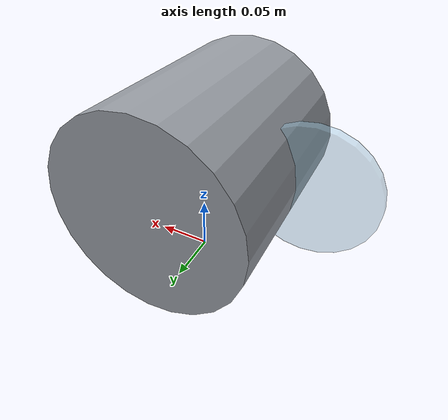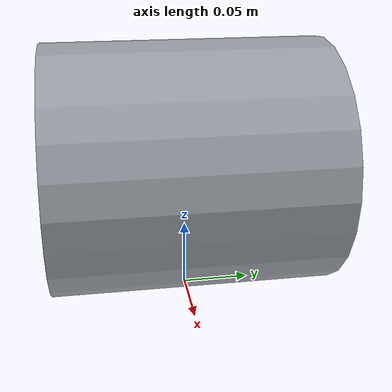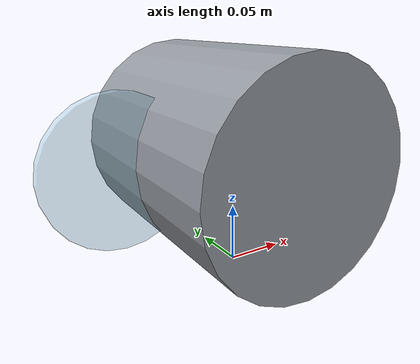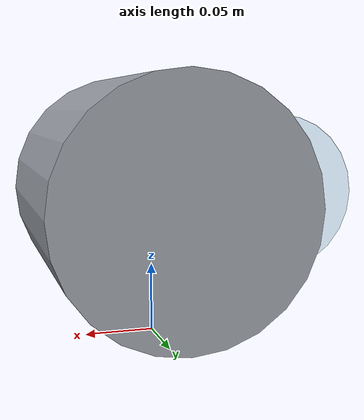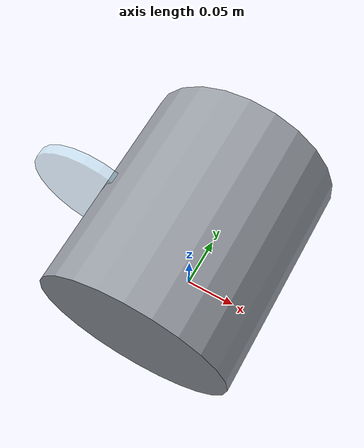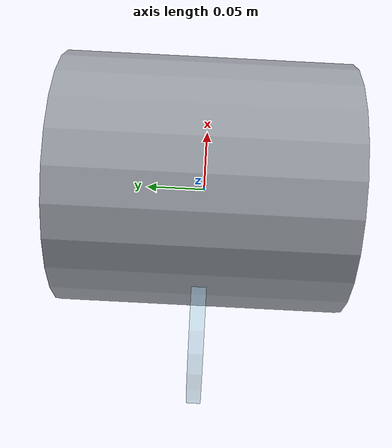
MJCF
<?xml version="1.0" encoding="utf-8"?>
<mujoco model="vacuum_chamber">
  <compiler angle="radian" autolimits="true"/>
  <default>
    <default class="body"><geom contype="1" conaffinity="1"/></default>
  </default>
  <worldbody>
    <body name="base">
      <geom type="cylinder" size="0.09 0.10" pos="0 0 0.10" rgba="0.6 0.62 0.65 1" class="body" quat="0.7071068 0.7071068 0 0"/>
      <body name="viewport_door" pos="-0.10 0 0.10">
        <joint name="viewport_door_joint" type="hinge" axis="0 0 1" range="0 1.8" damping="0.6" frictionloss="0.5"/>
  <geom type="cylinder" size="0.06 0.005" pos="0 0 0" rgba="0.6 0.8 0.9 0.4" class="body" quat="0.7071068 0.7071068 0 0"/>
      </body>
    </body>
  </worldbody>
</mujoco>
